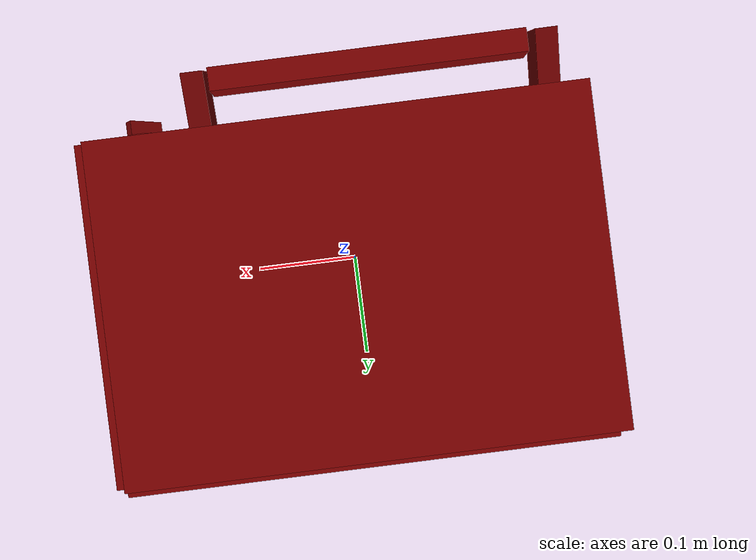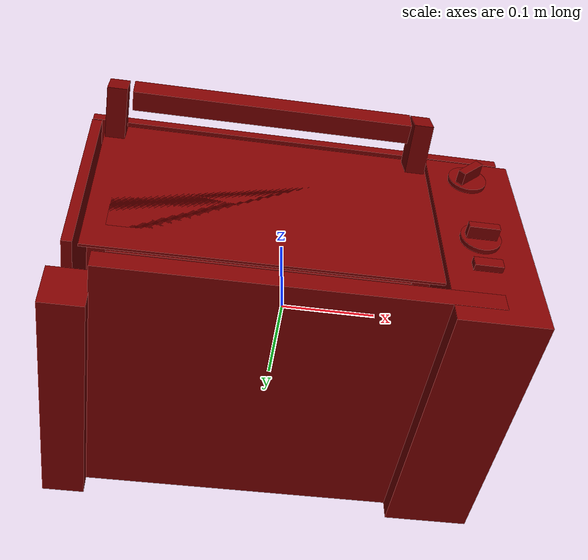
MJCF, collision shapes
<?xml version='1.0' encoding='UTF-8'?>
<mujoco model="model">
  <option timestep="0.002" gravity="0.0 0.0 -9.81"/>
  <compiler angle="radian"/>
  <asset>
    <mesh file="visuals/door.obj" name="door_vis"/>
    <mesh file="visuals/knob_temp.obj" name="knob_temp_vis"/>
    <mesh file="visuals/knob_time.obj" name="knob_time_vis"/>
    <mesh file="visuals/rack0.obj" name="rack0_vis"/>
    <mesh file="visuals/rack1.obj" name="rack1_vis"/>
    <mesh file="visuals/Body001.obj" name="Body001_vis"/>
    <mesh file="visuals/Button001.obj" name="Button001_vis"/>
    <mesh file="visuals/window.obj" name="window_vis"/>
    <texture file="visuals/T_BC001.png" name="Body001_material" type="2d"/>
    <material name="Body001_material" rgba="1 1 1 1.0" texture="Body001_material" shininess="0.1" specular="2"/>
    <texture file="visuals/T_BC001.png" name="door_material" type="2d"/>
    <material name="door_material" rgba="1 1 1 1.0" texture="door_material" shininess="0.1" specular="2"/>
    <texture file="visuals/T_BC001.png" name="window_material" type="2d"/>
    <material name="window_material" rgba="1 1 1 0.8799999952316284" texture="window_material" shininess="0.5" specular="0.3103448502657381"/>
    <texture file="visuals/T_BC001.png" name="knob_temp_material" type="2d"/>
    <material name="knob_temp_material" rgba="1 1 1 1.0" texture="knob_temp_material" shininess="0.4472135901451111" specular="0.3103448502657381"/>
    <texture file="visuals/T_BC001.png" name="knob_time_material" type="2d"/>
    <material name="knob_time_material" rgba="1 1 1 1.0" texture="knob_time_material" shininess="0.4472135901451111" specular="0.3103448502657381"/>
    <texture file="visuals/T_BC001.png" name="rack0_material" type="2d"/>
    <material name="rack0_material" rgba="1 1 1 1.0" texture="rack0_material" shininess="0.1" specular="4"/>
    <texture file="visuals/T_BC001.png" name="rack1_material" type="2d"/>
    <material name="rack1_material" rgba="1 1 1 1.0" texture="rack1_material" shininess="0.1" specular="4"/>
    <texture file="visuals/T_BC001.png" name="Button001_material" type="2d"/>
    <material name="Button001_material" rgba="1 1 1 1.0" texture="Button001_material" shininess="0.4472135901451111" specular="0.3103448502657381"/>
  </asset>
  <default>
    <default class="visual">
      <geom conaffinity="0" contype="0" group="1" type="mesh"/>
    </default>
    <default class="collision">
      <geom group="0" rgba="0.5 0 0 0.5"/>
    </default>
    <default class="spawn">
      <geom group="0" rgba="1 1 1 0.5" contype="0" conaffinity="0"/>
      <site group="0" rgba="1 1 1 0.5"/>
    </default>
    <default class="region">
      <geom group="1" conaffinity="0" contype="0" rgba="0 1 0 0"/>
    </default>
  </default>
  <worldbody>
    <body>
      <body name="object">
        <geom mesh="Body001_vis" type="mesh" solimp="0.998 0.998 0.001" solref="0.001 1" friction="0.95 0.3 0.1" class="visual" material="Body001_material"/>
        <geom class="collision" type="box" pos="-0.21388867497444153 0.024633608758449554 0.01936226710677147" size="0.005097392946481705 0.15109364688396454 0.1019260510802269" quat="1.0 0.0 0.0 0.0"/>
        <geom class="collision" type="box" pos="0.0003485039051156491 0.024633608758449554 0.12800443172454834" size="0.21872644126415253 0.15109364688396454 0.004818652756512165" quat="1.0 0.0 0.0 0.0"/>
        <geom class="collision" type="box" pos="0.18478648364543915 0.024633608758449554 -0.005674505606293678" size="0.04508014768362045 0.15109364688396454 0.1269628256559372" quat="1.0 0.0 0.0 0.0"/>
        <geom class="collision" type="box" pos="0.0003485038469079882 0.024559304118156433 -0.10282242298126221" size="0.19078472256660461 0.15116684138774872 0.010271656326949596" quat="1.0 0.0 0.0 0.0"/>
        <geom class="collision" type="box" pos="0.00465347757562995 0.17561514675617218 0.012308325618505478" size="0.21260076761245728 0.004715824965387583 0.1177997961640358" quat="1.0 0.0 0.0 0.0"/>
        <geom class="collision" type="box" pos="-0.21128518879413605 0.0403459295630455 -0.10771039128303528" size="0.021700631827116013 0.1353817880153656 0.024899370968341827" quat="1.0 0.0 0.0 0.0"/>
        <geom class="collision" type="box" pos="0.1295267641544342 0.026771117001771927 0.03681083768606186" size="0.009109459817409515 0.1222139224410057 0.0011643223697319627" quat="1.0 0.0 0.0 0.0"/>
        <geom class="collision" type="box" pos="0.1295267641544342 0.026771117001771927 -0.03029731661081314" size="0.009109459817409515 0.1222139224410057 0.0011643223697319627" quat="1.0 0.0 0.0 0.0"/>
        <geom class="collision" type="box" pos="-0.19369499385356903 0.026771117001771927 -0.03029731661081314" size="0.009109459817409515 0.1222139224410057 0.0011643223697319627" quat="1.0 0.0 0.0 0.0"/>
        <geom class="collision" type="box" pos="-0.19369499385356903 0.026771117001771927 0.03681083768606186" size="0.009109459817409515 0.1222139224410057 0.0011643223697319627" quat="1.0 0.0 0.0 0.0"/>
        <body name="door">
          <joint axis="1.0 0.0 0.0" pos="-0.033929310739040375 -0.12793278694152832 -0.08867983520030975" limited="true" name="door_joint" range="0.0 1.3707963267948966" type="hinge" damping="1" frictionloss="1" armature=".01" stiffness="0.5" springref="-0.5"/>
          <geom mesh="door_vis" type="mesh" solimp="0.998 0.998 0.001" solref="0.001 1" friction="0.95 0.3 0.1" class="visual" material="door_material"/>
          <geom class="collision" type="box" pos="-0.033796943724155426 -0.12656928598880768 0.013413598760962486" size="0.16915710270404816 0.0014045265270397067 0.09980838000774384" quat="1.0 0.0 0.0 0.0" name="door_main"/>
          <geom class="collision" type="box" pos="-0.1908259242773056 -0.15587416291236877 0.10044907033443451" size="0.009960582479834557 0.02580532617866993 0.014558535069227219" quat="0.9938510060310364 -0.11072570830583572 0.0 0.0"/>
          <geom class="collision" type="box" pos="0.12117913365364075 -0.15587416291236877 0.10044907033443451" size="0.009960582479834557 0.02580532617866993 0.014558535069227219" quat="0.9938510060310364 -0.11072570830583572 0.0 0.0"/>
          <geom class="collision" type="box" pos="-0.0334632508456707 -0.17135095596313477 0.10360601544380188" size="0.010575702413916588 0.010575702413916588 0.1418868452310562" quat="0.7071068286895752 -0.0 0.7071067690849304 0.0" name="door_handle_main"/>
          <body name="window">
            <geom mesh="window_vis" type="mesh" solimp="0.998 0.998 0.001" solref="0.001 1" friction="0.95 0.3 0.1" class="visual" material="window_material"/>
            <geom class="collision" type="box" pos="-0.03869171440601349 -0.12665095925331116 0.016832157969474792" size="0.1437849998474121 0.001322838244959712 0.07191884517669678" quat="1.0 0.0 0.0 0.0"/>
          </body>
        </body>
        <body name="knob_temp">
          <joint axis="0.0 1.0 0.0" pos="0.17760075628757477 -0.1364355981349945 -0.017171379178762436" limited="true" name="knob_temp_joint" range="0.0 3.2288591161895095" type="hinge" damping="0.05" armature="1" frictionloss="0.75"/>
          <geom mesh="knob_temp_vis" type="mesh" solimp="0.998 0.998 0.001" solref="0.001 1" friction="0.95 0.3 0.1" class="visual" material="knob_temp_material"/>
          <geom class="collision" type="cylinder" pos="0.17776861786842346 -0.13182459771633148 -0.017217790707945824" size="0.02046120911836624 0.002508010948076844" quat="0.7071068286895752 0.7071067690849304 0.0 0.0" friction="100 0.5 0.01"/>
          <geom class="collision" type="box" pos="0.17746473848819733 -0.14123669266700745 -0.017171189188957214" size="0.015455257147550583 0.007103573996573687 0.004262663424015045" quat="1.0 0.0 0.0 0.0" name="knob_temp_main" friction="100 0.5 0.01"/>
        </body>
        <body name="knob_time">
          <joint axis="0.0 1.0 0.0" pos="0.17868000268936157 -0.1364355981349945 0.08212599903345108" limited="true" name="knob_time_joint" range="0.0 5.497787143782138" type="hinge" damping="0.05" armature="1" frictionloss="0.75"/>
          <geom mesh="knob_time_vis" type="mesh" solimp="0.998 0.998 0.001" solref="0.001 1" friction="0.95 0.3 0.1" class="visual" material="knob_time_material"/>
          <geom class="collision" type="cylinder" pos="0.17856664955615997 -0.13182459771633148 0.08204465359449387" size="0.020150480791926384 0.002394000068306923" quat="0.7071068286895752 0.7071067690849304 0.0 0.0" friction="100 0.5 0.01"/>
          <geom class="collision" type="box" pos="0.17866390943527222 -0.14123669266700745 0.08204598724842072" size="0.015455257147550583 0.007103573996573687 0.004262663424015045" quat="0.38268330693244934 0.0 0.9238795638084412 0.0" name="knob_time_main" friction="100 0.5 0.01"/>
        </body>
        <body name="rack0">
          <geom class="region" name="reg_rack0" type="box" pos="-0.03182778134942055 0.013169333338737488 0.005198134109377861" size="0.1535549702346325 0.08781841939687729 0.030273038730025292"/>
          <joint axis="0.0 -1.0 0.0" pos="-0.03397946432232857 0.012722387909889221 -0.025537166744470596" limited="true" name="rack0_joint" range="0.0 0.20" type="slide" damping="1" frictionloss="1" armature=".01" stiffness="0.05"/>
          <geom mesh="rack0_vis" type="mesh" solimp="0.998 0.998 0.001" solref="0.001 1" friction="0.95 0.3 0.1" class="visual" material="rack0_material"/>
          <geom class="collision" type="box" pos="-0.033648520708084106 0.0139149259775877 -0.02599250338971615" size="0.16542015969753265 0.08682708442211151 0.0009401241550222039" quat="1.0 0.0 0.0 0.0"/>
        </body>
        <body name="rack1">
          <geom class="region" name="reg_rack1" type="box" pos="-0.03182778134942055 0.013169333338737488 0.0809216108173132" size="0.1535549702346325 0.08781841939687729 0.03795068694651127"/>
          <joint axis="0.0 -1.0 0.0" pos="-0.03397946432232857 0.012722387909889221 0.0423637293279171" limited="true" name="rack1_joint" range="0.0 0.20" type="slide" damping="1" frictionloss="1" armature=".01" stiffness="0.05"/>
          <geom mesh="rack1_vis" type="mesh" solimp="0.998 0.998 0.001" solref="0.001 1" friction="0.95 0.3 0.1" class="visual" material="rack1_material"/>
          <geom class="collision" type="box" pos="-0.03534368425607681 0.011622956022620201 0.0407845713198185" size="0.16372498869895935 0.08707385510206223 0.002469924744218588" quat="1.0 0.0 0.0 0.0"/>
        </body>
        <body name="Button001">
          <joint axis="0.0 1.0 0.0" pos="0.17780716717243195 -0.13106781244277954 -0.05901690572500229" limited="true" name="Button001_joint" range="0.0 0.002" type="slide" damping="1" frictionloss="1" armature=".01" stiffness="4" springref="0"/>
          <geom mesh="Button001_vis" type="mesh" solimp="0.998 0.998 0.001" solref="0.001 1" friction="0.95 0.3 0.1" class="visual" material="Button001_material"/>
          <geom class="collision" type="box" pos="0.17810724675655365 -0.13366685807704926 -0.05904971435666084" size="0.014250644482672215 0.00359069905243814 0.005966955330222845" quat="1.0 0.0 0.0 0.0"/>
        </body>
        <geom class="region" name="reg_int" type="box" pos="-0.03182778134942055 0.016870960593223572 0.017591457813978195" size="0.1535549702346325 0.13116878068447113 0.10124094954133034"/>
        <geom class="region" name="reg_main" type="box" pos="-3.725290298461914e-09 0.026178568601608276 0.0" size="0.23398580944538117 0.15515236353874207 0.13382307982444763"/>
      </body>
    </body>
  </worldbody>
  <actuator>
    <motor name="door_joint_actuator" joint="door_joint" gear="50"/>
    <motor name="knob_temp_joint_actuator" joint="knob_temp_joint" gear="50"/>
    <motor name="knob_time_joint_actuator" joint="knob_time_joint" gear="50"/>
    <motor name="rack0_joint_actuator" joint="rack0_joint" gear="50"/>
    <motor name="rack1_joint_actuator" joint="rack1_joint" gear="50"/>
    <motor name="Button001_joint_actuator" joint="Button001_joint" gear="0.5"/>
  </actuator>
</mujoco>
